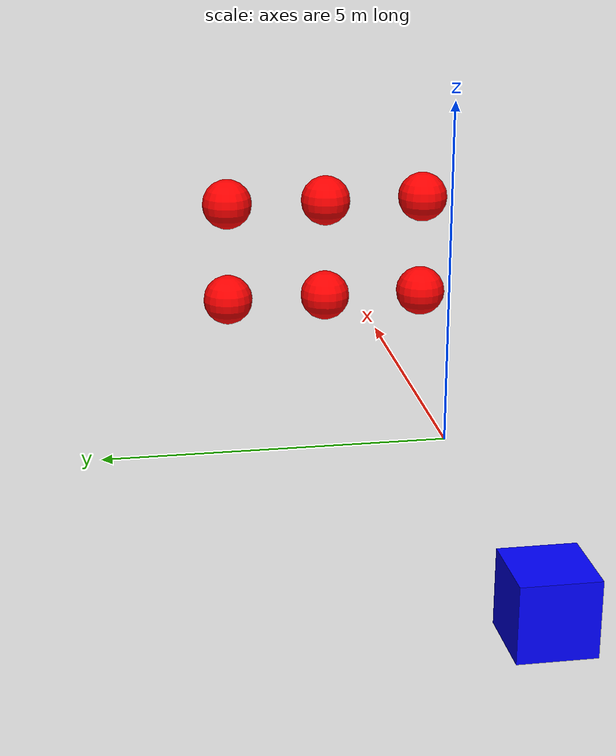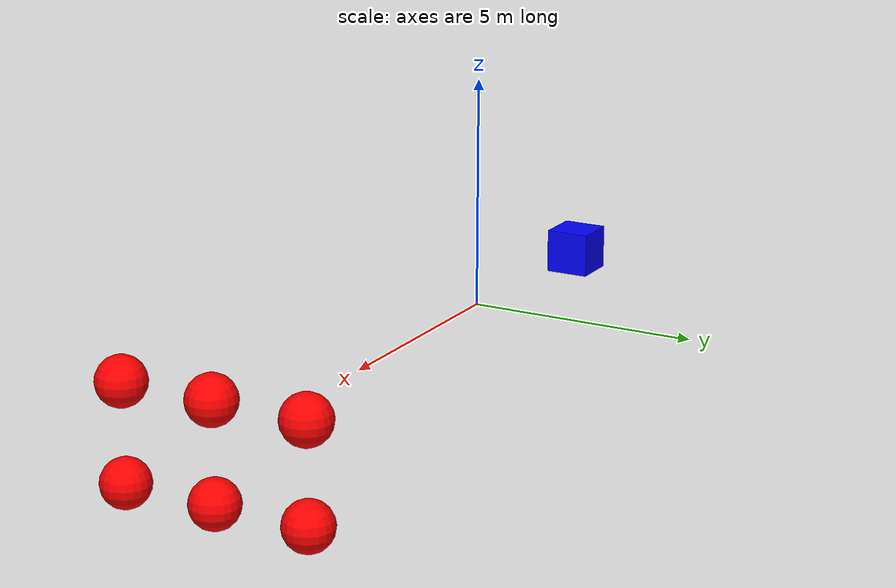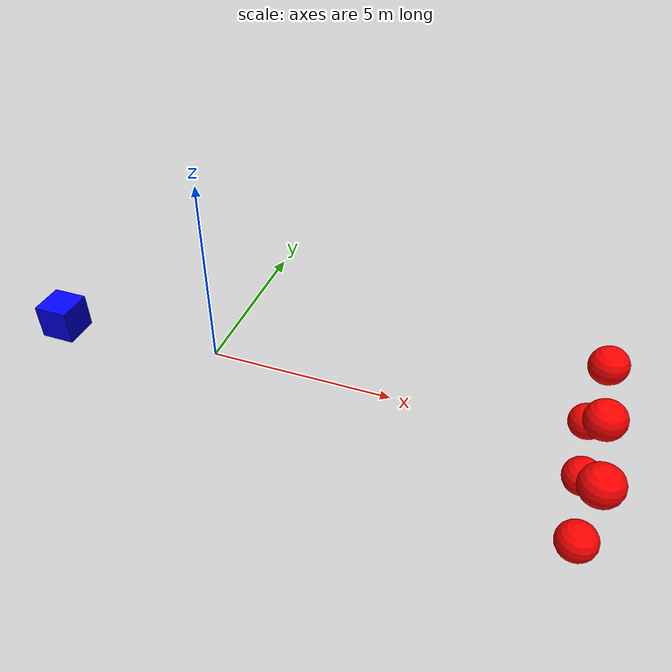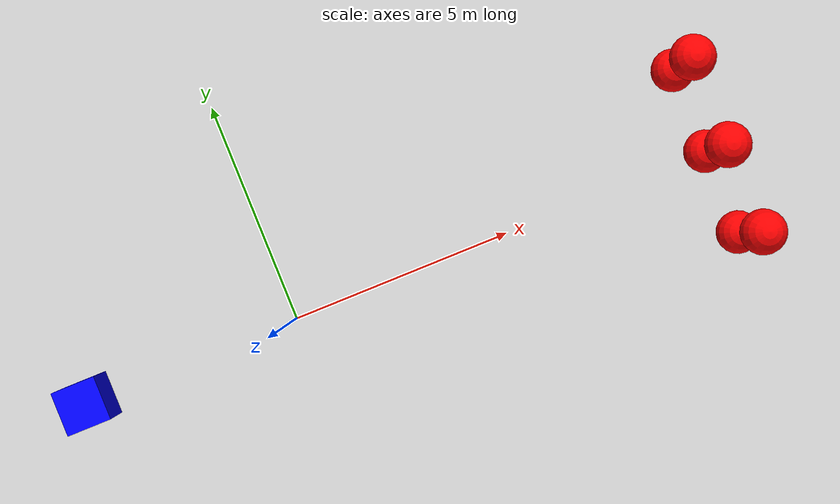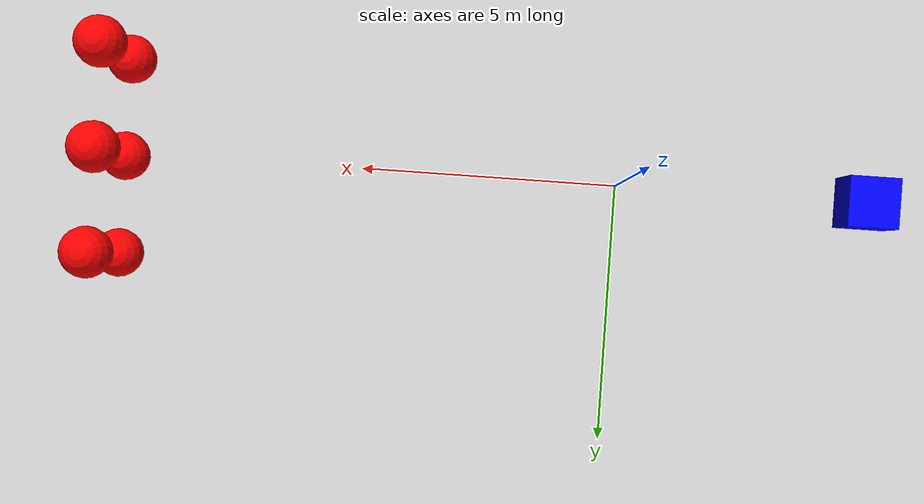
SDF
<?xml version="1.0" ?>
<sdf version="1.8">

  <world name="3d_world">

    <physics name="1ms" type="ode">
      <max_step_size>0.001</max_step_size>
      <real_time_factor>1.0</real_time_factor>
      <real_time_update_rate>1000.0</real_time_update_rate>
    </physics>
    <gravity>0 0 0</gravity>

    <plugin filename="gz-sim-physics-system" name="gz::sim::v8::systems::Physics"/>
    <plugin filename="libignition-gazebo-user-commands-system.so" name="ignition::gazebo::systems::UserCommands"/>
    <plugin filename="gz-sim-scene-broadcaster-system" name="gz::sim::systems::SceneBroadcaster"/>
    <plugin filename="gz-sim-sensors-system" name="gz::sim::systems::Sensors">
      <render_engine>ogre2</render_engine>
    </plugin>

    <light type="directional" name="sun">
      <cast_shadows>true</cast_shadows>
      <pose>0 0 10 0 0 0</pose>
      <diffuse>0.8 0.8 0.8 1</diffuse>
      <specular>0.2 0.2 0.2 1</specular>
      <attenuation>
        <range>1000</range>
        <constant>0.9</constant>
        <linear>0.01</linear>
        <quadratic>0.001</quadratic>
      </attenuation>
      <direction>-0.5 0.1 -0.9</direction>
    </light>

    <!-- AGENTE -->
    <model name='agente' canonical_link='chassis'>
      <pose relative_to='world'>-5.0 0 0 0 0 0</pose> <!-- Start at z=0 -->
      <link name='chassis'>
        <pose relative_to='__model__'>0.0 0 0.0 0 0 0</pose>
        <inertial>
          <mass>1.14395</mass>
          <inertia>
            <ixx>0.095329</ixx>
            <ixy>0</ixy>
            <ixz>0</ixz>
            <iyy>0.381317</iyy>
            <iyz>0</iyz>
            <izz>0.476646</izz>
          </inertia>
        </inertial>
        <visual name='visual'>
          <geometry><box><size>1.0 1.0 1.0</size></box></geometry>
          <material>
            <ambient>0.0 0.0 1.0 1</ambient>
            <diffuse>0.0 0.0 1.0 1</diffuse>
            <specular>0.0 0.0 1.0 1</specular>
          </material>
        </visual>
        <collision name='collision'>
          <geometry><box><size>1.0 1.0 1.0</size></box></geometry>
        </collision>
        <enable_gravity>false</enable_gravity>
      </link>

      <plugin filename="ignition-gazebo-odometry-publisher-system"
              name="ignition::gazebo::systems::OdometryPublisher">
        <dimensions>3</dimensions>
      </plugin>
      <plugin filename="ignition-gazebo-velocity-control-system"
              name="ignition::gazebo::systems::VelocityControl">
        <initial_linear>0.0 0 0</initial_linear>
        <initial_angular>0 0 0</initial_angular>
      </plugin>
      <plugin filename="libignition-gazebo-pose-publisher-system.so"
              name="ignition::gazebo::systems::PosePublisher">
        <topic>/agente/pose</topic>
        <frame_id>agente</frame_id>
        <update_rate>30</update_rate>
      </plugin>
    </model>

    <!-- ===== LOWER ROW (z = -1) ===== -->
    <model name='obstacle_1' canonical_link='obstacle'>
      <static>false</static>
      <pose relative_to='world'>10.0 -2.0 -1.0 0 0 0</pose>
      <link name='obstacle'>
        <visual name='visual'>
          <geometry><sphere><radius>0.5</radius></sphere></geometry>
          <material><ambient>1 0 0 1</ambient><diffuse>1 0 0 1</diffuse><specular>1 0 0 1</specular></material>
        </visual>
        <collision name='collision'><geometry><sphere><radius>0.5</radius></sphere></geometry></collision>
        <enable_gravity>false</enable_gravity>
      </link>
      <plugin filename="ignition-gazebo-velocity-control-system" name="ignition::gazebo::systems::VelocityControl">
        <initial_linear>-1.0 0 0</initial_linear><initial_angular>0 0 0</initial_angular>
      </plugin>
      <plugin filename="ignition-gazebo-odometry-publisher-system"
              name="ignition::gazebo::systems::OdometryPublisher"><dimensions>3</dimensions></plugin>
    </model>

    <model name='obstacle_2' canonical_link='obstacle'>
      <static>false</static>
      <pose relative_to='world'>10.0 0.0 -1.0 0 0 0</pose>
      <link name='obstacle'>
        <visual name='visual'>
          <geometry><sphere><radius>0.5</radius></sphere></geometry>
          <material><ambient>1 0 0 1</ambient><diffuse>1 0 0 1</diffuse><specular>1 0 0 1</specular></material>
        </visual>
        <collision name='collision'><geometry><sphere><radius>0.5</radius></sphere></geometry></collision>
        <enable_gravity>false</enable_gravity>
      </link>
      <plugin filename="ignition-gazebo-velocity-control-system" name="ignition::gazebo::systems::VelocityControl">
        <initial_linear>-1.0 0 0</initial_linear><initial_angular>0 0 0</initial_angular>
      </plugin>
      <plugin filename="ignition-gazebo-odometry-publisher-system"
              name="ignition::gazebo::systems::OdometryPublisher"><dimensions>3</dimensions></plugin>
    </model>

    <model name='obstacle_3' canonical_link='obstacle'>
      <static>false</static>
      <pose relative_to='world'>10.0 2.0 -1.0 0 0 0</pose>
      <link name='obstacle'>
        <visual name='visual'>
          <geometry><sphere><radius>0.5</radius></sphere></geometry>
          <material><ambient>1 0 0 1</ambient><diffuse>1 0 0 1</diffuse><specular>1 0 0 1</specular></material>
        </visual>
        <collision name='collision'><geometry><sphere><radius>0.5</radius></sphere></geometry></collision>
        <enable_gravity>false</enable_gravity>
      </link>
      <plugin filename="ignition-gazebo-velocity-control-system" name="ignition::gazebo::systems::VelocityControl">
        <initial_linear>-1.0 0 0</initial_linear><initial_angular>0 0 0</initial_angular>
      </plugin>
      <plugin filename="ignition-gazebo-odometry-publisher-system"
              name="ignition::gazebo::systems::OdometryPublisher"><dimensions>3</dimensions></plugin>
    </model>

    <!-- ===== UPPER ROW (z = +1) ===== -->
    <model name='obstacle_4' canonical_link='obstacle'>
      <static>false</static>
      <pose relative_to='world'>10.0 -2.0 1.0 0 0 0</pose>
      <link name='obstacle'>
        <visual name='visual'>
          <geometry><sphere><radius>0.5</radius></sphere></geometry>
          <material><ambient>1 0 0 1</ambient><diffuse>1 0 0 1</diffuse><specular>1 0 0 1</specular></material>
        </visual>
        <collision name='collision'><geometry><sphere><radius>0.5</radius></sphere></geometry></collision>
        <enable_gravity>false</enable_gravity>
      </link>
      <plugin filename="ignition-gazebo-velocity-control-system" name="ignition::gazebo::systems::VelocityControl">
        <initial_linear>-1.0 0 0</initial_linear><initial_angular>0 0 0</initial_angular>
      </plugin>
      <plugin filename="ignition-gazebo-odometry-publisher-system"
              name="ignition::gazebo::systems::OdometryPublisher"><dimensions>3</dimensions></plugin>
    </model>

    <model name='obstacle_5' canonical_link='obstacle'>
      <static>false</static>
      <pose relative_to='world'>10.0 0.0 1.0 0 0 0</pose>
      <link name='obstacle'>
        <visual name='visual'>
          <geometry><sphere><radius>0.5</radius></sphere></geometry>
          <material><ambient>1 0 0 1</ambient><diffuse>1 0 0 1</diffuse><specular>1 0 0 1</specular></material>
        </visual>
        <collision name='collision'><geometry><sphere><radius>0.5</radius></sphere></geometry></collision>
        <enable_gravity>false</enable_gravity>
      </link>
      <plugin filename="ignition-gazebo-velocity-control-system" name="ignition::gazebo::systems::VelocityControl">
        <initial_linear>-1.0 0 0</initial_linear><initial_angular>0 0 0</initial_angular>
      </plugin>
      <plugin filename="ignition-gazebo-odometry-publisher-system"
              name="ignition::gazebo::systems::OdometryPublisher"><dimensions>3</dimensions></plugin>
    </model>

    <model name='obstacle_6' canonical_link='obstacle'>
      <static>false</static>
      <pose relative_to='world'>10.0 2.0 1.0 0 0 0</pose>
      <link name='obstacle'>
        <visual name='visual'>
          <geometry><sphere><radius>0.5</radius></sphere></geometry>
          <material><ambient>1 0 0 1</ambient><diffuse>1 0 0 1</diffuse><specular>1 0 0 1</specular></material>
        </visual>
        <collision name='collision'><geometry><sphere><radius>0.5</radius></sphere></geometry></collision>
        <enable_gravity>false</enable_gravity>
      </link>
      <plugin filename="ignition-gazebo-velocity-control-system" name="ignition::gazebo::systems::VelocityControl">
        <initial_linear>-1.0 0 0</initial_linear><initial_angular>0 0 0</initial_angular>
      </plugin>
      <plugin filename="ignition-gazebo-odometry-publisher-system"
              name="ignition::gazebo::systems::OdometryPublisher"><dimensions>3</dimensions></plugin>
    </model>

  </world>
</sdf>
